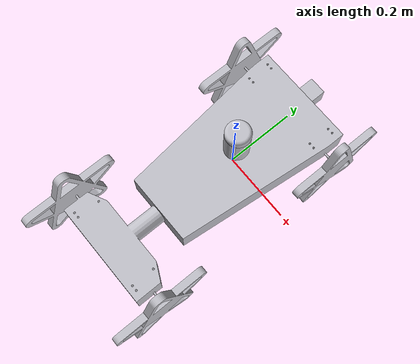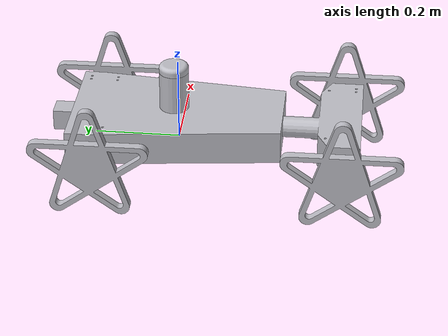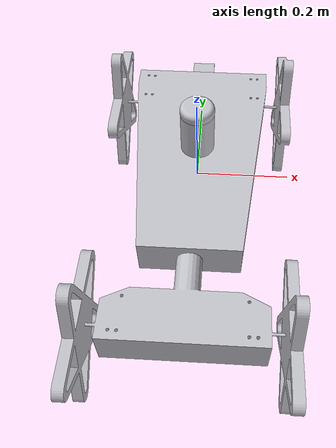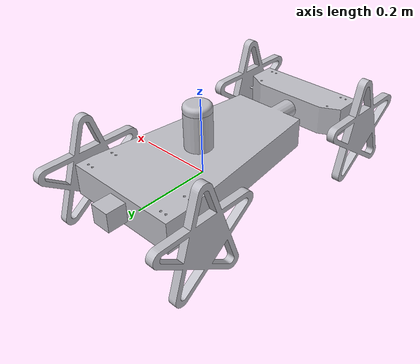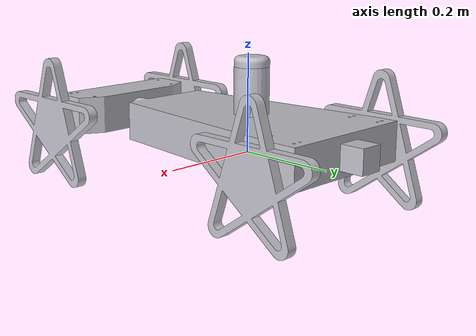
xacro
<?xml version="1.0" ?>
<robot name="urdf" xmlns:xacro="http://www.ros.org/wiki/xacro">

<xacro:include filename="$(find urdf_description)/urdf/materials.xacro" />
<xacro:include filename="$(find urdf_description)/urdf/urdf.trans" />
<xacro:include filename="$(find urdf_description)/urdf/urdf.gazebo" />
<link name="base_link">
  <inertial>
    <origin xyz="1.9569299070099078e-10 -0.05813163242034392 0.04247595084677872" rpy="0 0 0"/>
    <mass value="102.12336092035486"/>
    <inertia ixx="4.218646" iyy="0.65498" izz="4.721371" ixy="0.0" iyz="-0.017271" ixz="0.0"/>
  </inertial>
  <visual>
    <origin xyz="0 0 0" rpy="0 0 0"/>
    <geometry>
      <mesh filename="package://urdf_description/meshes/base_link.stl" scale="0.001 0.001 0.001"/>
    </geometry>
    <material name="silver"/>
  </visual>
  <collision>
    <origin xyz="0 0 0" rpy="0 0 0"/>
    <geometry>
      <mesh filename="package://urdf_description/meshes/base_link.stl" scale="0.001 0.001 0.001"/>
    </geometry>
  </collision>
</link>

<link name="front_right_1">
  <inertial>
    <origin xyz="0.01025680000000534 -0.009227339452558353 -0.0029583152296452087" rpy="0 0 0"/>
    <mass value="4.021284693934406"/>
    <inertia ixx="0.027723" iyy="0.014003" izz="0.014003" ixy="0.0" iyz="-0.0" ixz="0.0"/>
  </inertial>
  <visual>
    <origin xyz="-0.18 -0.1975 -0.024" rpy="0 0 0"/>
    <geometry>
      <mesh filename="package://urdf_description/meshes/front_right_1.stl" scale="0.001 0.001 0.001"/>
    </geometry>
    <material name="silver"/>
  </visual>
  <collision>
    <origin xyz="-0.18 -0.1975 -0.024" rpy="0 0 0"/>
    <geometry>
      <mesh filename="package://urdf_description/meshes/front_right_1.stl" scale="0.001 0.001 0.001"/>
    </geometry>
  </collision>
</link>

<link name="rear_right_1">
  <inertial>
    <origin xyz="0.010257256560892353 -0.009227339452561378 -0.0029583152296477656" rpy="0 0 0"/>
    <mass value="4.021284693934405"/>
    <inertia ixx="0.027723" iyy="0.014003" izz="0.014003" ixy="0.0" iyz="-0.0" ixz="0.0"/>
  </inertial>
  <visual>
    <origin xyz="-0.18 0.3865 -0.024" rpy="0 0 0"/>
    <geometry>
      <mesh filename="package://urdf_description/meshes/rear_right_1.stl" scale="0.001 0.001 0.001"/>
    </geometry>
    <material name="silver"/>
  </visual>
  <collision>
    <origin xyz="-0.18 0.3865 -0.024" rpy="0 0 0"/>
    <geometry>
      <mesh filename="package://urdf_description/meshes/rear_right_1.stl" scale="0.001 0.001 0.001"/>
    </geometry>
  </collision>
</link>

<link name="front_left_1">
  <inertial>
    <origin xyz="-0.01025679999998716 -0.00922733945256271 -0.0029583152296415137" rpy="0 0 0"/>
    <mass value="4.021284693934405"/>
    <inertia ixx="0.027723" iyy="0.014003" izz="0.014003" ixy="0.0" iyz="-0.0" ixz="0.0"/>
  </inertial>
  <visual>
    <origin xyz="0.18 -0.1975 -0.024" rpy="0 0 0"/>
    <geometry>
      <mesh filename="package://urdf_description/meshes/front_left_1.stl" scale="0.001 0.001 0.001"/>
    </geometry>
    <material name="silver"/>
  </visual>
  <collision>
    <origin xyz="0.18 -0.1975 -0.024" rpy="0 0 0"/>
    <geometry>
      <mesh filename="package://urdf_description/meshes/front_left_1.stl" scale="0.001 0.001 0.001"/>
    </geometry>
  </collision>
</link>

<link name="rear_left_1">
  <inertial>
    <origin xyz="-0.01025675656087971 -0.009227339452558603 -0.0029583152296419404" rpy="0 0 0"/>
    <mass value="4.021284693934406"/>
    <inertia ixx="0.027723" iyy="0.014003" izz="0.014003" ixy="0.0" iyz="-0.0" ixz="0.0"/>
  </inertial>
  <visual>
    <origin xyz="0.18 0.3865 -0.024" rpy="0 0 0"/>
    <geometry>
      <mesh filename="package://urdf_description/meshes/rear_left_1.stl" scale="0.001 0.001 0.001"/>
    </geometry>
    <material name="silver"/>
  </visual>
  <collision>
    <origin xyz="0.18 0.3865 -0.024" rpy="0 0 0"/>
    <geometry>
      <mesh filename="package://urdf_description/meshes/rear_left_1.stl" scale="0.001 0.001 0.001"/>
    </geometry>
  </collision>
</link>

<link name="camera_1">
  <inertial>
    <origin xyz="2.9132252166164106e-15 0.024999999999996858 3.2682190287403046e-15" rpy="0 0 0"/>
    <mass value="0.98125"/>
    <inertia ixx="0.000409" iyy="0.000409" izz="0.000409" ixy="0.0" iyz="-0.0" ixz="0.0"/>
  </inertial>
  <visual>
    <origin xyz="-0.0 -0.25 -0.04" rpy="0 0 0"/>
    <geometry>
      <mesh filename="package://urdf_description/meshes/camera_1.stl" scale="0.001 0.001 0.001"/>
    </geometry>
    <material name="silver"/>
  </visual>
  <collision>
    <origin xyz="-0.0 -0.25 -0.04" rpy="0 0 0"/>
    <geometry>
      <mesh filename="package://urdf_description/meshes/camera_1.stl" scale="0.001 0.001 0.001"/>
    </geometry>
  </collision>
</link>

<link name="lidar_1">
  <inertial>
    <origin xyz="7.640838106868729e-15 -1.1726730697603216e-15 0.009532857423070612" rpy="0 0 0"/>
    <mass value="0.5745555289117393"/>
    <inertia ixx="0.000187" iyy="0.000187" izz="0.000338" ixy="0.0" iyz="-0.0" ixz="0.0"/>
  </inertial>
  <visual>
    <origin xyz="-0.0 -0.01 -0.175" rpy="0 0 0"/>
    <geometry>
      <mesh filename="package://urdf_description/meshes/lidar_1.stl" scale="0.001 0.001 0.001"/>
    </geometry>
    <material name="silver"/>
  </visual>
  <collision>
    <origin xyz="-0.0 -0.01 -0.175" rpy="0 0 0"/>
    <geometry>
      <mesh filename="package://urdf_description/meshes/lidar_1.stl" scale="0.001 0.001 0.001"/>
    </geometry>
  </collision>
</link>

<joint name="Rev31" type="continuous">
  <origin xyz="0.18 0.1975 0.024" rpy="0 0 0"/>
  <parent link="base_link"/>
  <child link="front_right_1"/>
  <axis xyz="-1.0 0.0 0.0"/>
</joint>

<joint name="Rev32" type="continuous">
  <origin xyz="0.18 -0.3865 0.024" rpy="0 0 0"/>
  <parent link="base_link"/>
  <child link="rear_right_1"/>
  <axis xyz="-1.0 -0.0 -0.0"/>
</joint>

<joint name="Rev33" type="continuous">
  <origin xyz="-0.18 0.1975 0.024" rpy="0 0 0"/>
  <parent link="base_link"/>
  <child link="front_left_1"/>
  <axis xyz="-1.0 -0.0 0.0"/>
</joint>

<joint name="Rev34" type="continuous">
  <origin xyz="-0.18 -0.3865 0.024" rpy="0 0 0"/>
  <parent link="base_link"/>
  <child link="rear_left_1"/>
  <axis xyz="-1.0 -0.0 0.0"/>
</joint>

<joint name="Rigid36" type="fixed">
  <origin xyz="0.0 0.25 0.04" rpy="0 1.57 0"/>
  <parent link="base_link"/>
  <child link="camera_1"/>
</joint>

<joint name="Rigid37" type="fixed">
  <origin xyz="0.0 0.01 0.175" rpy="0 0 0"/>
  <parent link="base_link"/>
  <child link="lidar_1"/>
</joint>

</robot>

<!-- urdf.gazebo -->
<robot name="urdf" xmlns:xacro="http://www.ros.org/wiki/xacro" >

<xacro:property name="body_color" value="Gazebo/Silver" />

<gazebo>
  <plugin name="control" filename="libgazebo_ros_control.so"/>
</gazebo>
<gazebo reference="base_link">
  <material>${body_color}</material>
  <mu1>0.2</mu1>
  <mu2>0.2</mu2>
  <selfCollide>true</selfCollide>
  <gravity>true</gravity>
</gazebo>

<gazebo reference="front_right_1">
  <material>${body_color}</material>
  <mu1>2000</mu1>
  <mu2>2000</mu2>
  <selfCollide>true</selfCollide>
</gazebo>

<gazebo reference="rear_right_1">
  <material>${body_color}</material>
  <mu1>2000</mu1>
  <mu2>2000</mu2>
  <selfCollide>true</selfCollide>
</gazebo>

<gazebo reference="front_left_1">
  <material>${body_color}</material>
  <mu1>2000</mu1>
  <mu2>2000</mu2>
  <selfCollide>true</selfCollide>
</gazebo>

<gazebo reference="rear_left_1">
  <material>${body_color}</material>
  <mu1>2000</mu1>
  <mu2>2000</mu2>
  <selfCollide>true</selfCollide>
</gazebo>

<gazebo reference="lidar_1">
  <material>${body_color}</material>
  <mu1>0.2</mu1>
  <mu2>0.2</mu2>
  <selfCollide>true</selfCollide>
  <sensor type="ray" name="head_hokuyo_sensor">
      <pose>0 0 0 0 0 0</pose>
      <visualize>true</visualize>
      <update_rate>40</update_rate>
      <ray>
        <scan>
          <horizontal>
            <samples>720</samples>
            <resolution>1</resolution>
            <min_angle>-3.14159</min_angle>
            <max_angle>3.14159</max_angle>
          </horizontal>
        </scan>
        <range>
          <min>0.3</min>
          <max>12.0</max>
          <resolution>0.01</resolution>
        </range>
        <noise>
          <type>gaussian</type>
          <mean>0.0</mean>
          <stddev>0.01</stddev>
        </noise>
      </ray>
      <plugin name="gazebo_ros_head_hokuyo_controller" filename="libgazebo_ros_laser.so">
        <topicName>/scan</topicName>
        <frameName>lidar_1</frameName>
      </plugin>
    </sensor>
</gazebo>

<gazebo reference="camera_1">
  <material>${body_color}</material>
  <mu1>0.2</mu1>
  <mu2>0.2</mu2>
  <selfCollide>true</selfCollide>
  <sensor type="camera" name="camera1">
      <update_rate>30.0</update_rate>
      <camera name="head">
        <horizontal_fov>1.3962634</horizontal_fov>
        <image>
          <width>800</width>
          <height>800</height>
          <format>R8G8B8</format>
        </image>
        <clip>
          <near>0.02</near>
          <far>300</far>
        </clip>
        <noise>
          <type>gaussian</type>
          <!-- Noise is sampled independently per pixel on each frame.
               That pixel's noise value is added to each of its color
               channels, which at that point lie in the range [0,1]. -->
          <mean>0.0</mean>
          <stddev>0.007</stddev>
        </noise>
      </camera>
      <plugin name="camera_controller" filename="libgazebo_ros_camera.so">
        <alwaysOn>true</alwaysOn>
        <updateRate>0.0</updateRate>
        <cameraName>rrbot/camera1</cameraName>
        <imageTopicName>image_raw</imageTopicName>
        <cameraInfoTopicName>camera_info</cameraInfoTopicName>
        <frameName>camera_1</frameName>
        <hackBaseline>0.07</hackBaseline>
        <distortionK1>0.0</distortionK1>
        <distortionK2>0.0</distortionK2>
        <distortionK3>0.0</distortionK3>
        <distortionT1>0.0</distortionT1>
        <distortionT2>0.0</distortionT2>
      </plugin>
    </sensor>
</gazebo>

<gazebo>
  <plugin name="skid_steer_drive_controller" filename="libgazebo_ros_skid_steer_drive.so">
    <updateRate>100.0</updateRate>
    <robotNamespace>/</robotNamespace>
    <leftFrontJoint>Rev33</leftFrontJoint>
    <rightFrontJoint>Rev31</rightFrontJoint>
    <leftRearJoint>Rev34</leftRearJoint>
    <rightRearJoint>Rev32</rightRearJoint>
    <wheelSeparation>0.14</wheelSeparation>
    <wheelDiameter>0.18</wheelDiameter>
    <robotBaseFrame>base_link</robotBaseFrame>
    <torque>20</torque>
    <topicName>cmd_vel</topicName>
    <broadcastTF>true</broadcastTF>
    <!-- Topic to publish nav_msgs/Odometry messages, defaults to `odom` -->
    <odometryTopic>odom</odometryTopic>

    <!-- Odometry frame, defaults to `odom` -->
    <odometryFrame>odom</odometryFrame>
    <!-- Odometry source, 0 for ENCODER, 1 for WORLD, defaults to WORLD -->
    <odometrySource>1</odometrySource>

    <!-- Set to true to publish transforms for the odometry, defaults to true -->
    <publishOdom>true</publishOdom>

    <!-- Set to true to publish sensor_msgs/JointState on /joint_states for the wheel joints, defaults to false -->
    <publishWheelJointState>true</publishWheelJointState>
  </plugin>
</gazebo>

</robot>
